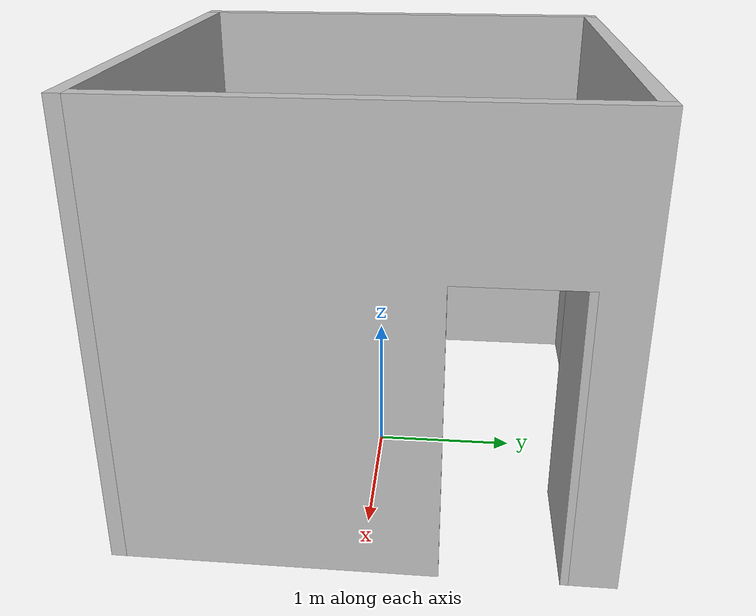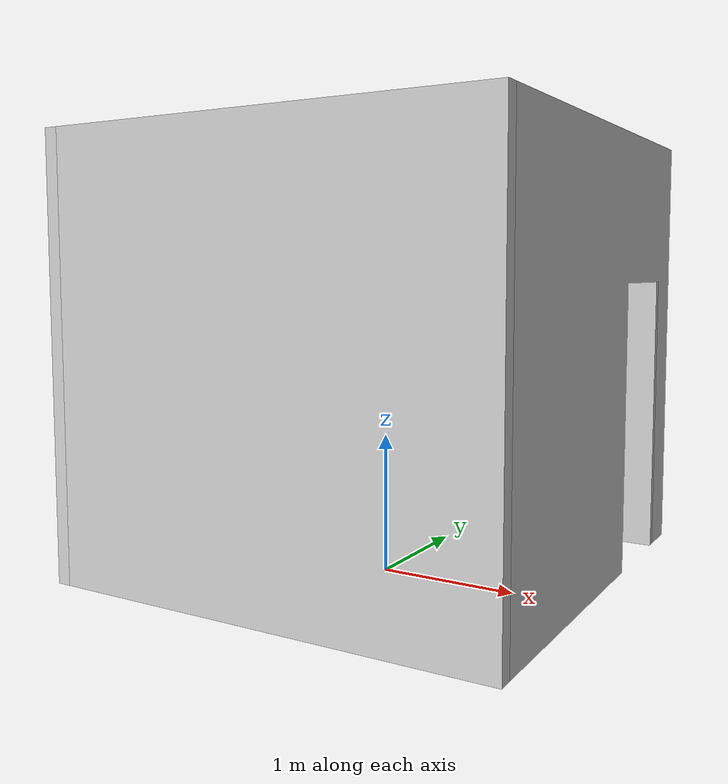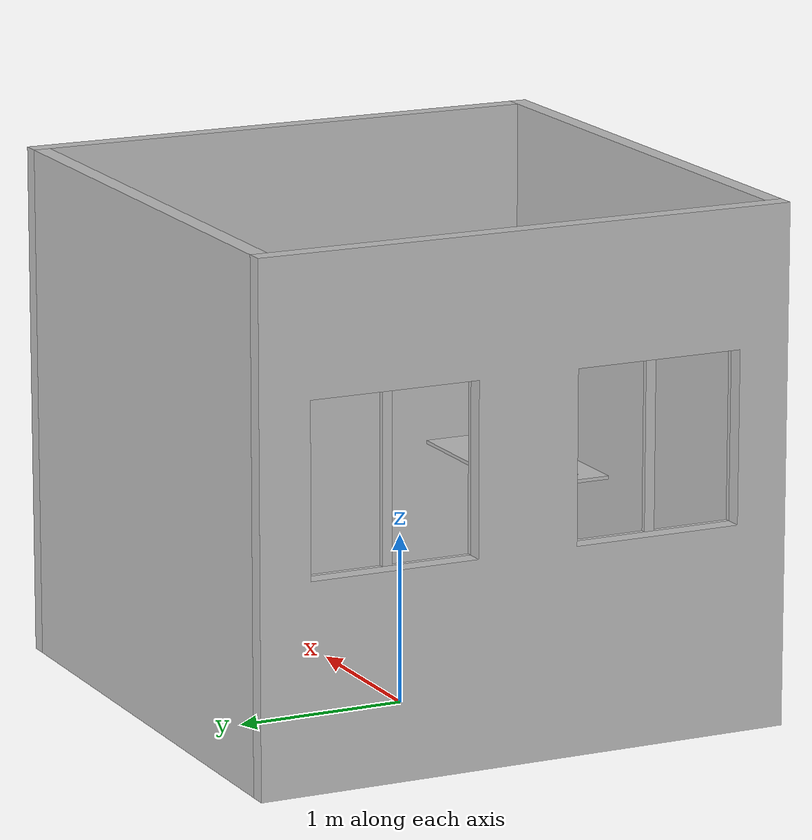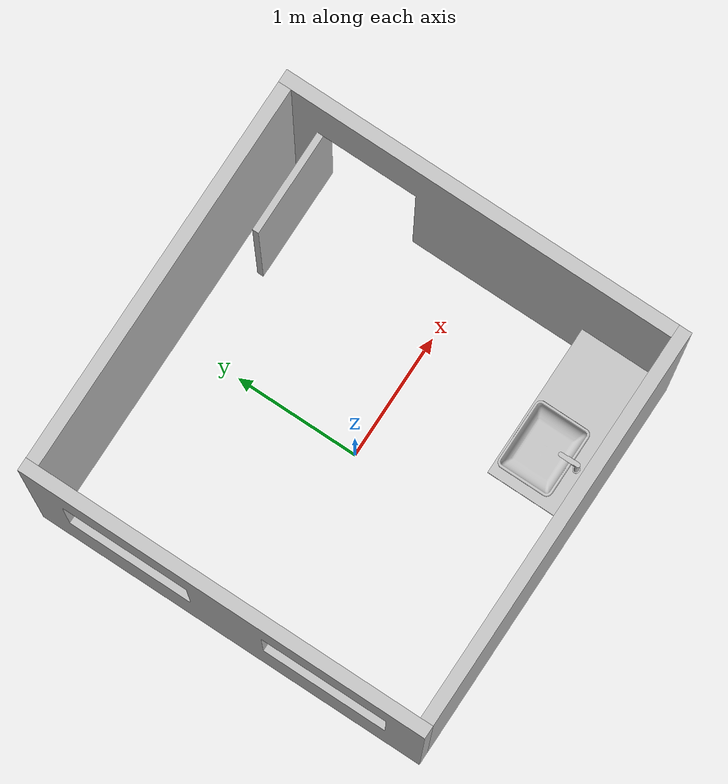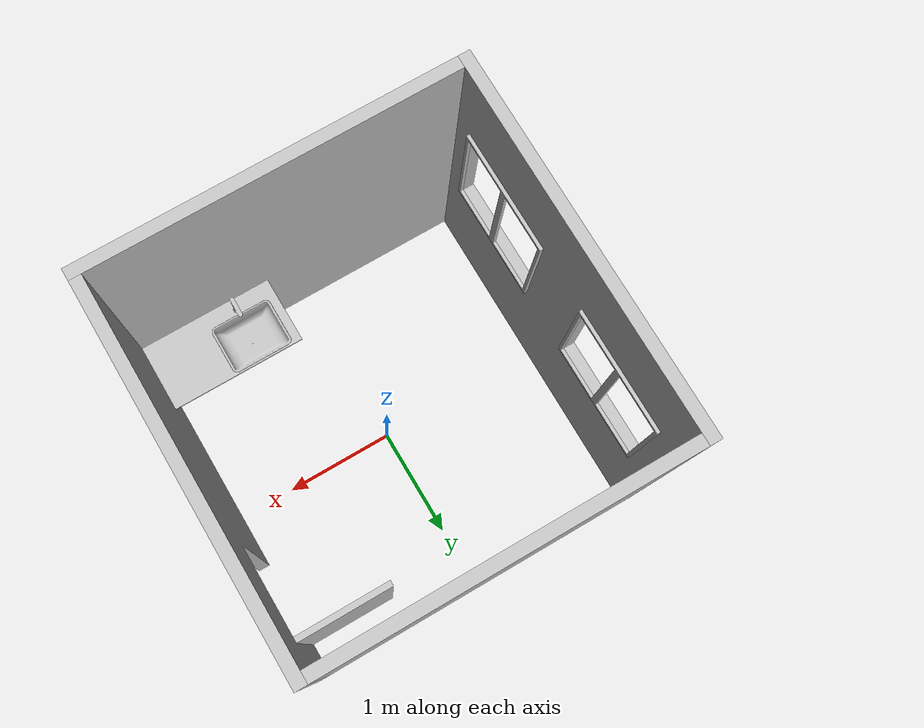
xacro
<?xml version="1.0" ?>
<robot name="artpark_world" xmlns:xacro="http://www.ros.org/wiki/xacro">

<xacro:include filename="$(find artpark_world_description)/urdf/materials.xacro" />
<xacro:include filename="$(find artpark_world_description)/urdf/artpark_world.trans" />
<xacro:include filename="$(find artpark_world_description)/urdf/artpark_world.gazebo" />

<link name="wall_front_1">
  <inertial>
    <origin rpy="0 0 0" xyz="-1.55 0.0 1.5473684210526315"/>
    <mass value="5965.999999999999"/>
    <inertia ixx="10736.927018" ixy="0.0" ixz="0.0" iyy="5446.812018" iyz="0.0" izz="5300.058333"/>
  </inertial>
  <visual>
    <origin rpy="0 0 0" xyz="0 0 0"/>
    <geometry>
      <mesh filename="package://artpark_world_description/meshes/base_link.stl" scale="0.001 0.001 0.001"/>
    </geometry>
    <material name="silver"/>
  </visual>
  <collision>
    <origin rpy="0 0 0" xyz="-1.55 0 1.6"/>
    <geometry>
      <box size=".1 3.2 3" />
    </geometry>
  </collision>
</link>

<link name="sink_1">
  <inertial>
    <origin rpy="0 0 0" xyz="1.3571004886525628e-07 3.2631598623211744e-07 -0.08441974691106835"/>
    <mass value="24.788439309209977"/>
    <inertia ixx="0.565846" ixy="-0.0" ixz="-0.0" iyy="0.840984" iyz="0.0" izz="1.318326"/>
  </inertial>
  <visual>
    <origin rpy="0 0 0" xyz="-0.65379 1.135558 -1.1"/>
    <geometry>
      <mesh filename="package://artpark_world_description/meshes/sink_1.stl" scale="0.001 0.001 0.001"/>
    </geometry>
    <material name="silver"/>
  </visual>
  <collision>
    <origin rpy="0 0 0" xyz="-0.65379 1.135558 -1.1"/>
    <geometry>
      <mesh filename="package://artpark_world_description/meshes/sink_1.stl" scale="0.001 0.001 0.001"/>
    </geometry>
  </collision>
</link>

<link name="tap_1">
  <inertial>
    <origin rpy="0 0 0" xyz="7.653621825198798e-08 0.04521139251938 0.17075988373424877"/>
    <mass value="3.356096896803199"/>
    <inertia ixx="0.032763" ixy="0.0" ixz="0.0" iyy="0.027983" iyz="-0.005482" izz="0.005356"/>
  </inertial>
  <visual>
    <origin rpy="0 0 0" xyz="-0.65379 1.428526 -1.1"/>
    <geometry>
      <mesh filename="package://artpark_world_description/meshes/tap_1.stl" scale="0.001 0.001 0.001"/>
    </geometry>
    <material name="silver"/>
  </visual>
  <collision>
    <origin rpy="0 0 0" xyz="-0.65379 1.428526 -1.1"/>
    <geometry>
      <mesh filename="package://artpark_world_description/meshes/tap_1.stl" scale="0.001 0.001 0.001"/>
    </geometry>
  </collision>
</link>

<link name="window_frame1_1">
  <inertial>
    <origin rpy="0 0 0" xyz="0.014999999999999902 -0.5 0.0"/>
    <mass value="43.23779999999999"/>
    <inertia ixx="11.48396" ixy="0.0" ixz="0.0" iyy="6.331853" iyz="0.0" izz="5.158592"/>
  </inertial>
  <visual>
    <origin rpy="0 0 0" xyz="1.5 0.3 -1.8"/>
    <geometry>
      <mesh filename="package://artpark_world_description/meshes/window_frame1_1.stl" scale="0.001 0.001 0.001"/>
    </geometry>
    <material name="silver"/>
  </visual>
</link>

<link name="window_frame2_1">
  <inertial>
    <origin rpy="0 0 0" xyz="0.014999999999999902 0.5 0.0"/>
    <mass value="43.23779999999999"/>
    <inertia ixx="11.48396" ixy="0.0" ixz="0.0" iyy="6.331853" iyz="0.0" izz="5.158592"/>
  </inertial>
  <visual>
    <origin rpy="0 0 0" xyz="1.5 -0.3 -1.8"/>
    <geometry>
      <mesh filename="package://artpark_world_description/meshes/window_frame2_1.stl" scale="0.001 0.001 0.001"/>
    </geometry>
    <material name="silver"/>
  </visual>
</link>

<link name="wall_right_1">
  <inertial>
    <origin rpy="0 0 0" xyz="1.5 -0.050000000000000044 0.0"/>
    <mass value="7064.999999999999"/>
    <inertia ixx="5304.6375" ixy="0.0" ixz="0.0" iyy="10597.5" iyz="0.0" izz="5304.6375"/>
  </inertial>
  <visual>
    <origin rpy="0 0 0" xyz="1.5 -1.6 -1.6"/>
    <geometry>
      <mesh filename="package://artpark_world_description/meshes/wall_right_1.stl" scale="0.001 0.001 0.001"/>
    </geometry>
    <material name="silver"/>
  </visual>
  <collision>
    <origin rpy="0 0 0" xyz="1.5 -.05 0"/>
    <geometry>
      <box size="3 .1 3" />
    </geometry>
  </collision>
</link>

<link name="wall_left_1">
  <inertial>
    <origin rpy="0 0 0" xyz="1.55 0.050000000000000044 0.0"/>
    <mass value="7300.499999999999"/>
    <inertia ixx="5481.45875" ixy="-0.0" ixz="0.0" iyy="11321.85875" iyz="-0.0" izz="5852.5675"/>
  </inertial>
  <visual>
    <origin rpy="0 0 0" xyz="1.5 1.6 -1.6"/>
    <geometry>
      <mesh filename="package://artpark_world_description/meshes/wall_left_1.stl" scale="0.001 0.001 0.001"/>
    </geometry>
    <material name="silver"/>
  </visual>
  <collision>
    <origin rpy="0 0 0" xyz="1.55 0.05 0"/>
    <geometry>
      <box size="3.1 .1 3" />
    </geometry>
  </collision>
</link>

<link name="wall_back_1">
  <inertial>
    <origin rpy="0 0 0" xyz="0.050000000000000044 -1.7266233766233767 0.10389610389610393"/>
    <mass value="6044.499999999999"/>
    <inertia ixx="9360.935547" ixy="0.0" ixz="-0.0" iyy="4682.498663" iyz="-644.719481" izz="4688.51105"/>
  </inertial>
  <visual>
    <origin rpy="0 0 0" xyz="-1.5 -1.6 -1.6"/>
    <geometry>
      <mesh filename="package://artpark_world_description/meshes/wall_back_1.stl" scale="0.001 0.001 0.001"/>
    </geometry>
    <material name="silver"/>
  </visual>
  <collision>
    <origin rpy="0 0 0" xyz="-1.5 -1.6 -1.6"/>
    <geometry>
      <mesh filename="package://artpark_world_description/meshes/wall_back_1.stl" scale="0.001 0.001 0.001"/>
    </geometry>
  </collision>
</link>

<link name="counter_1">
  <inertial>
    <origin rpy="0 0 0" xyz="0.1260939981350092 0.2669963391402612 0.0"/>
    <mass value="74.75496729488177"/>
    <inertia ixx="2.535231" ixy="-0.918544" ixz="0.0" iyy="9.089657" iyz="-0.0" izz="11.619904"/>
  </inertial>
  <visual>
    <origin rpy="0 0 0" xyz="-0.9 1.5 -1.09"/>
    <geometry>
      <mesh filename="package://artpark_world_description/meshes/counter_1.stl" scale="0.001 0.001 0.001"/>
    </geometry>
    <material name="silver"/>
  </visual>
  <collision>
    <origin rpy="0 0 0" xyz="-0.9 1.5 -1.09"/>
    <geometry>
      <mesh filename="package://artpark_world_description/meshes/counter_1.stl" scale="0.001 0.001 0.001"/>
    </geometry>
  </collision>
</link>

<link name="door_1_1">
  <inertial>
    <origin rpy="0 0 0" xyz="-0.4500000000000002 -0.025000000000000133 0.0"/>
    <mass value="706.4999999999999"/>
    <inertia ixx="235.647187" ixy="-0.0" ixz="-0.0" iyy="283.18875" iyz="-0.0" izz="47.835938"/>
  </inertial>
  <visual>
    <origin rpy="0 0 0" xyz="-1.6 -1.3 -1.1"/>
    <geometry>
      <mesh filename="package://artpark_world_description/meshes/door_1_1.stl" scale="0.001 0.001 0.001"/>
    </geometry>
    <material name="silver"/>
  </visual>
  <collision>
    <origin rpy="0 0 0" xyz="-0.45 -0.025 0"/>
    <geometry>
      <box size=".9 .05 2" />
    </geometry>
  </collision>
</link>

<joint name="sink_joint" type="fixed">
  <origin rpy="0 0 0" xyz="-0.24621 0.364442 0.01"/>
  <parent link="counter_1"/>
  <child link="sink_1"/>
</joint>

<joint name="tap_joint" type="fixed">
  <origin rpy="0 0 0" xyz="-0.24621 0.071474 0.01"/>
  <parent link="counter_1"/>
  <child link="tap_1"/>
</joint>

<joint name="frame1_joint" type="fixed">
  <origin rpy="0 0 0" xyz="0.0 1.3 0.2"/>
  <parent link="wall_left_1"/>
  <child link="window_frame1_1"/>
</joint>

<joint name="frame2_joint" type="fixed">
  <origin rpy="0 0 0" xyz="0.0 1.9 0.2"/>
  <parent link="wall_left_1"/>
  <child link="window_frame2_1"/>
</joint>

<joint name="wall_joint1" type="fixed">
  <origin rpy="0 0 0" xyz="-1.5 1.6 1.6"/>
  <parent link="wall_front_1"/>
  <child link="wall_right_1"/>
</joint>

<joint name="wall_joint2" type="fixed">
  <origin rpy="0 0 0" xyz="-1.5 -1.6 1.6"/>
  <parent link="wall_front_1"/>
  <child link="wall_left_1"/>
</joint>

<joint name="wall_joint3" type="fixed">
  <origin rpy="0 0 0" xyz="3.0 0.0 0.0"/>
  <parent link="wall_right_1"/>
  <child link="wall_back_1"/>
</joint>

<joint name="counter_joint" type="fixed">
  <origin rpy="0 0 0" xyz="2.4 0.1 -0.51"/>
  <parent link="wall_left_1"/>
  <child link="counter_1"/>
</joint>

<joint name="door_joint" type="fixed">
  <origin rpy="0 0 0" xyz="0.1 -0.3 -0.5"/>
  <parent link="wall_back_1"/>
  <child link="door_1_1"/>
</joint>

</robot>

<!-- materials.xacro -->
<robot name="artpark_world" xmlns:xacro="http://www.ros.org/wiki/xacro" >

<material name="silver">
  <color rgba="${192/255} ${192/255} ${192/255} 1.0"/>
</material>
<material name="orange">
  <color rgba="${255/255} ${108/255} ${10/255} 1.0"/>
</material>

</robot>

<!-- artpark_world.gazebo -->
<robot name="artpark_world" xmlns:xacro="http://www.ros.org/wiki/xacro" >

<xacro:property name="body_color" value="Gazebo/PaintedWall" />
<xacro:property name="counter_color" value="Gazebo/Primary" />
<xacro:property name="sink_color" value="Gazebo/White" />
<xacro:property name="tap_color" value="Gazebo/Silver" />
<xacro:property name="window_frame_color" value="Gazebo/DarkGrey" />
<xacro:property name="door_color" value="Gazebo/PioneerBody" />

<gazebo>
  <plugin filename="libgazebo_ros_control.so" name="control"/>
</gazebo>

<gazebo reference="wall_front_1">
  <material>${body_color}</material>
  <mu1>0.2</mu1>
  <mu2>0.2</mu2>
  <selfCollide>true</selfCollide>
  <gravity>true</gravity>
</gazebo>

<gazebo reference="sink_1">
  <material>${sink_color}</material>
  <mu1>0.2</mu1>
  <mu2>0.2</mu2>
  <selfCollide>true</selfCollide>
</gazebo>

<gazebo reference="tap_1">
  <material>${tap_color}</material>
  <mu1>0.2</mu1>
  <mu2>0.2</mu2>
  <selfCollide>true</selfCollide>
</gazebo>

<gazebo reference="window_frame1_1">
  <material>${window_frame_color}</material>
  <mu1>0.2</mu1>
  <mu2>0.2</mu2>
  <selfCollide>true</selfCollide>
</gazebo>

<gazebo reference="window_frame2_1">
  <material>${window_frame_color}</material>
  <mu1>0.2</mu1>
  <mu2>0.2</mu2>
  <selfCollide>true</selfCollide>
</gazebo>

<gazebo reference="wall_right_1">
  <material>${body_color}</material>
  <mu1>0.2</mu1>
  <mu2>0.2</mu2>
  <selfCollide>true</selfCollide>
</gazebo>

<gazebo reference="wall_left_1">
  <material>${body_color}</material>
  <mu1>0.2</mu1>
  <mu2>0.2</mu2>
  <selfCollide>true</selfCollide>
</gazebo>

<gazebo reference="wall_back_1">
  <material>${body_color}</material>
  <mu1>0.2</mu1>
  <mu2>0.2</mu2>
  <selfCollide>true</selfCollide>
</gazebo>

<gazebo reference="counter_1">
  <material>${counter_color}</material>
  <mu1>0.2</mu1>
  <mu2>0.2</mu2>
  <selfCollide>true</selfCollide>
</gazebo>

<gazebo reference="door_1_1">
  <material>${door_color}</material>
  <mu1>0.2</mu1>
  <mu2>0.2</mu2>
  <selfCollide>true</selfCollide>
</gazebo>

</robot>
